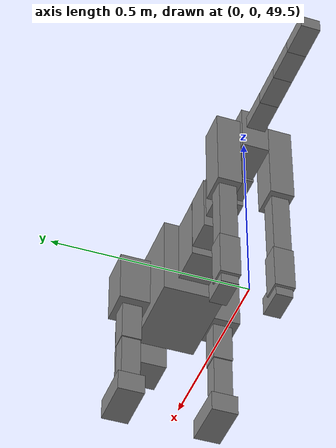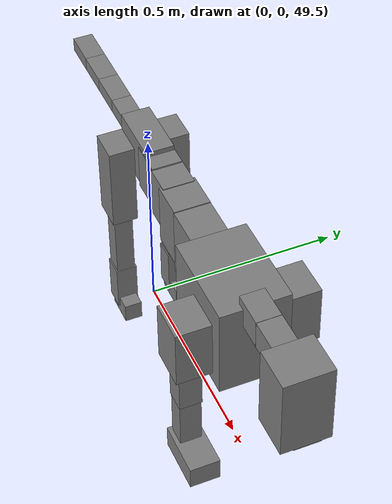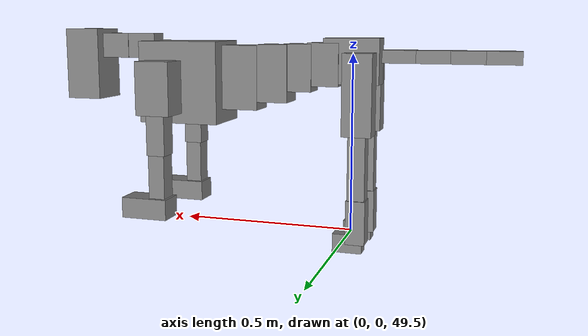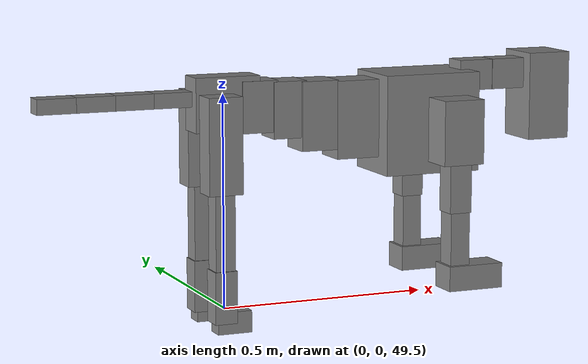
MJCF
<mujoco model="dog">

    <default>
        <joint armature="0.02" stiffness="1" damping="0.2" limited="true"/>
        <geom condim="3" friction="1 0.05 0.05" margin="0.01"/>
        <motor ctrllimited="true" ctrlrange="-1.0 1.0" forcelimited="true" gear="50"/>
    </default>

    <compiler inertiafromgeom="true" angle="radian"/>

    <option timestep="0.016" iterations="50" tolerance="1e-10" solver="Newton" jacobian="dense" cone="pyramidal"/>

    <size nconmax="20000" njmax="60000" nstack="5000000"/>
    <visual>
        <map force="0.1" zfar="30"/>
        <rgba haze="0.15 0.25 0.35 1"/>
        <quality shadowsize="2048"/>
        <global offwidth="800" offheight="800"/>
    </visual>

    <asset>
        <texture type="skybox" builtin="gradient" rgb1="0.3 0.5 0.7" rgb2="0 0 0" width="512" height="512"/>
        <texture name="texplane" type="2d" builtin="checker" rgb1=".2 .3 .4" rgb2=".1 0.15 0.2" width="512" height="512"
                 mark="cross" markrgb=".8 .8 .8"/>
        <texture name="texgeom" type="cube" builtin="flat" mark="cross" width="127" height="1278" rgb1="0.8 0.6 0.4"
                 rgb2="0.8 0.6 0.4" markrgb="1 1 1" random="0.01"/>

        <material name="matplane" reflectance="0.3" texture="texplane" texrepeat="1 1" texuniform="true"/>
        <material name="matgeom" texture="texgeom" texuniform="true" rgba="0.8 0.6 .4 1"/>
    </asset>

    <worldbody>
        <geom name="floor" pos="0 0 0" size="0 0 .25" type="plane" material="matplane" condim="3"/>

        <light directional="false" diffuse=".2 .2 .2" specular="0 0 0" pos="0 0 5" dir="0 0 -1" castshadow="false"/>
        <light mode="targetbodycom" target="torso" directional="false" diffuse=".8 .8 .8" specular="0.3 0.3 0.3"
               pos="0 0 4.0" dir="0 0 -1"/>

        <body name="root" pos="0 0 50">
            <freejoint name="root_1"/>
            <geom type="box" pos="0 0 -0.02" size="0.0774  0.0358  0.063" density="2030"/>

            <body name="spine1" pos="0.054 0 0">
                <joint name="spine1_y" axis="0 1 0" range="0 0.7" limited="true"/>
                <geom type="box" pos="0.02375 0 -0.03" size="0.04375  0.0375  0.05985" density="2030"/>

                <body name="spine2" pos="0.0612 0 0">
                    <joint name="spine2_y" axis="0 1 0" range="-0.15 0.15" limited="true"/>
                    <geom type="box" pos="0.03555  0  -0.04" size="0.04055  0.039  0.06615" density="2030"/>

                    <body name="spine3" pos="0.0730 0 0">
                        <joint name="spine3_y" axis="0 1 0" range="-0.15 0.15" limited="true"/>
                        <geom type="box" pos="0.03555  0  -0.057" size="0.04555  0.0445  0.081" density="2030"/>

                        <body name="spine4" pos="0.0780 0 0">
                            <joint name="spine4_y" axis="0 1 0" range="-0.15 0.15" limited="true"/>
                            <geom type="box" pos="0.05265  0  -0.07" size="0.05265  0.045  0.09135" density="2030"/>

                            <body name="torso" pos="0.1082 0 0">
                                <joint name="torso_y" axis="0 1 0" range="-0.15 0.15" limited="true"/>
                                <geom type="box" pos="0.11925  0  -0.085" size="0.11925  0.085  0.11745"
                                      density="2030"/>

                                <body name="neck1" pos="0.2160  0   0.0180">
                                    <joint name="neck1_y" axis="0 1 0" range="-1.2  -1" limited="true"/>
                                    <geom type="box" pos="0.0423  0  0" size="0.0423  0.03  0.036" density="2325"/>

                                    <body name="neck2" pos="0.0853  0  0">
                                        <joint name="neck2_y" axis="0 1 0" range="0.1  0" limited="true"/>
                                        <geom type="box" pos="0.0423  0  0" size="0.0423  0.03  0.036" density="2325"/>

                                        <body name="head" pos="0.0853  0  0">
                                            <joint name="head_y" axis="0 1 0" range="-0.3  -0.2" limited="true"/>
                                            <geom type="box" pos="0.0531  0  -0.055" size="0.0531  0.06  0.1044"
                                                  density="4030"/>

                                        </body>
                                    </body>
                                </body>

                                <body name="front_shoulder" pos="0.156  0   -0.0480">
                                    <joint name="front_shoulder_y" axis="0 1 0" range="-1 1.5" limited="true"/>
                                    <geom type="box" pos="0 0.13 -0.0491" size="0.0504  0.0430  0.0758" density="1158"/>
                                    <geom type="box" pos="0 -0.13 -0.0491" size="0.0504  0.0430  0.0758"
                                          density="1158"/>

                                    <body name="front_elbow" pos="0  0  -0.0983">
                                        <joint name="front_elbow_y" axis="0 1 0" range="-2 0" limited="true"/>
                                        <geom type="box" pos="0 0.13 -0.0708" size="0.0272  0.0278  0.0708"
                                              density="1081"/>
                                        <geom type="box" pos="0 -0.13 -0.0708" size="0.0272  0.0278  0.0708"
                                              density="1081"/>

                                        <body name="front_wrist" pos="0  0  -0.1416">
                                            <joint name="front_wrist_y" axis="0 1 0" range="-0.2 0" limited="true"/>
                                            <geom type="box" pos="0 0.13 -0.0695" size="0.0239  0.0265  0.0826"
                                                  density="1664"/>
                                            <geom type="box" pos="0 -0.13 -0.0695" size="0.0239  0.0265  0.0826"
                                                  density="1664"/>

                                            <body name="front_finger_end" pos="0  0  -0.1390">
                                                <joint name="front_finger_y" axis="0 1 0" range="-0.4 1"
                                                       limited="true"/>
                                                <geom type="box" pos="0.0372  0.13  -0.0145"
                                                      size="0.0683  0.0372  0.0295" density="1515"/>
                                                <geom type="box" pos="0.0372  -0.13  -0.0145"
                                                      size="0.0683  0.0372  0.0295" density="1515"/>

                                            </body>

                                        </body>
                                    </body>
                                </body>

                            </body>
                        </body>
                    </body>
                </body>
            </body>

            <body name="back_hip" pos="-0.03 0 -0.018">
                <joint name="back_hip_y" axis="0 1 0" range="-1.5 0.3" limited="true"/>
                <geom type="box" pos="0 0.07 -0.0884" size="0.0405  0.0318  0.1112" density="1154"/>
                <geom type="box" pos="0 -0.07 -0.0884" size="0.0405  0.0318  0.1112" density="1154"/>

                <body name="back_knee" pos="0  0  -0.1769">
                    <joint name="back_knee_y" axis="0 1 0" range="0 2.8" limited="true"/>
                    <geom type="box" pos="0 0.07 -0.1047" size="0.0238  0.0234  0.1203" density="1227"/>
                    <geom type="box" pos="0 -0.07 -0.1047" size="0.0238  0.0234  0.1203" density="1227"/>

                    <body name="back_ankle" pos="0  0  -0.2094">
                        <joint name="back_ankle_y" axis="0 1 0" range="-2.2 0" limited="true"/>
                        <geom type="box" pos="0 0.07 -0.0495" size="0.0266  0.0266  0.0608" density="1284"/>
                        <geom type="box" pos="0 -0.07 -0.0495" size="0.0266  0.0266  0.0608" density="1284"/>

                        <body name="back_toe_end" pos="0  0  -0.0990">
                            <joint name="back_toe_y" axis="0 1 0" range="-0.4 1" limited="true"/>
                            <geom type="box" pos="0.0222  0.07  -0.0105" size="0.0407  0.0222  0.0255" density="1515"/>
                            <geom type="box" pos="0.0222  -0.07  -0.0105" size="0.0407  0.0222  0.0255" density="1515"/>

                        </body>
                    </body>
                </body>
            </body>

            <body name="tail1" pos="-0.074 0 -0.006">
                <joint name="tail1_y" axis="0 1 0" range="-0.2 0.2" limited="true"/>
                <geom type="box" pos="-0.0536  0  0" size="0.045  0.025  0.0175" density="1587"/>

                <body name="tail2" pos="-0.09 0 0">
                    <joint name="tail2_y" axis="0 1 0" range="-0.2 0.2" limited="true"/>
                    <geom type="box" pos="-0.0536  0  0" size="0.045  0.025  0.0175" density="1587"/>

                    <body name="tail3" pos="-0.09 0 0">
                        <joint name="tail3_y" axis="0 1 0" range="-0.2 0.2" limited="true"/>
                        <geom type="box" pos="-0.0536  0  0" size="0.045  0.025  0.0175" density="1587"/>

                        <body name="tail4" pos="-0.09 0 0">
                            <joint name="tail4_y" axis="0 1 0" range="-0.2 0.2" limited="true"/>
                            <geom type="box" pos="-0.0536  0  0" size="0.045  0.025  0.0175" density="1587"/>

                        </body>
                    </body>
                </body>
            </body>
        </body>
    </worldbody>

    <actuator>
        <motor joint="spine1_y" forcerange="-150 150     "/>
        <motor joint="spine2_y" forcerange="-150 150     "/>
        <motor joint="spine3_y" forcerange="-150 150     "/>
        <motor joint="spine4_y" forcerange="-150 150     "/>
        <motor joint="torso_y" forcerange="-150 150     "/>
        <motor joint="neck1_y" forcerange="-100 100       "/>
        <motor joint="neck2_y" forcerange="-100 100       "/>
        <motor joint="head_y" forcerange="-150 150       "/>
        <motor joint="front_shoulder_y" forcerange="-188.64 198.28"/>
        <motor joint="front_elbow_y" forcerange="-177.75 124.42"/>
        <motor joint="front_wrist_y" forcerange="-76.71 135.37"/>
        <motor joint="front_finger_y" forcerange="-89.25 69.32"/>
        <motor joint="back_hip_y" forcerange="-326.32 297.41"/>
        <motor joint="back_knee_y" forcerange="-316.91 224.04"/>
        <motor joint="back_angle_y" forcerange="-190.76 135.34"/>
        <motor joint="back_toe_y" forcerange="-65.62 31.95"/>
        <motor joint="tail1_y" forcerange="-50 50     "/>
        <motor joint="tail2_y" forcerange="-50 50     "/>
        <motor joint="tail3_y" forcerange="-50 50     "/>
        <motor joint="tail4_y" forcerange="-50 50     "/>
    </actuator>
</mujoco>
